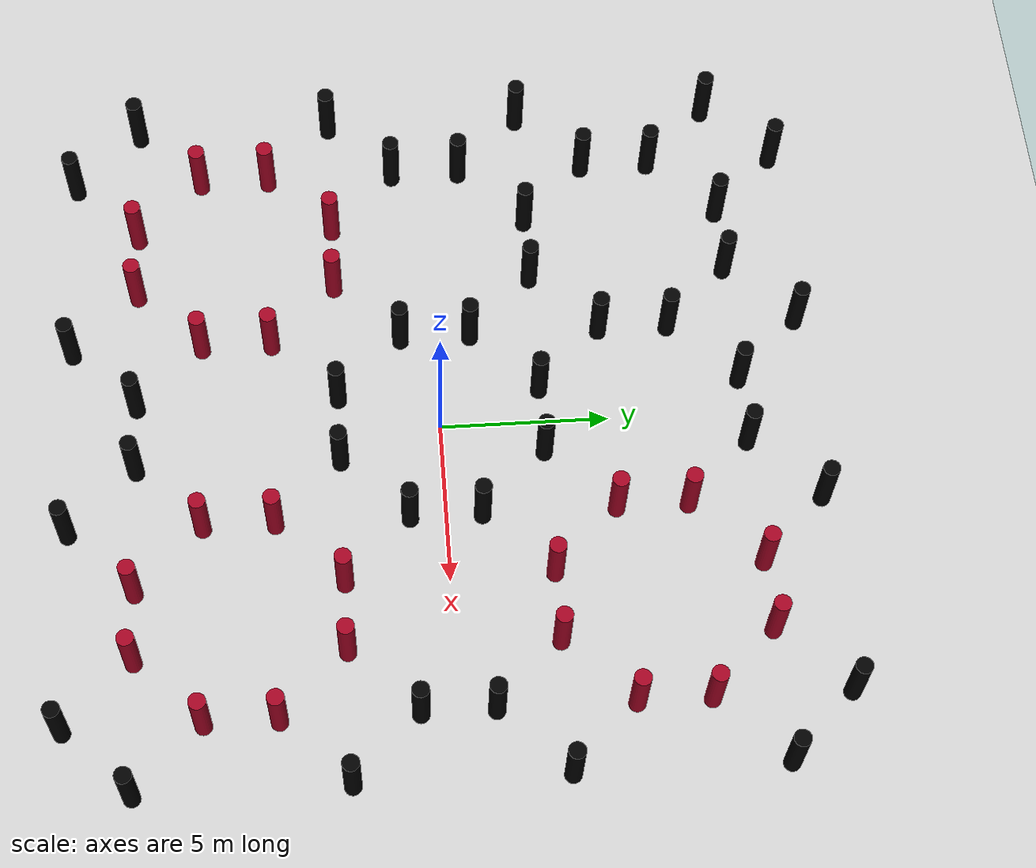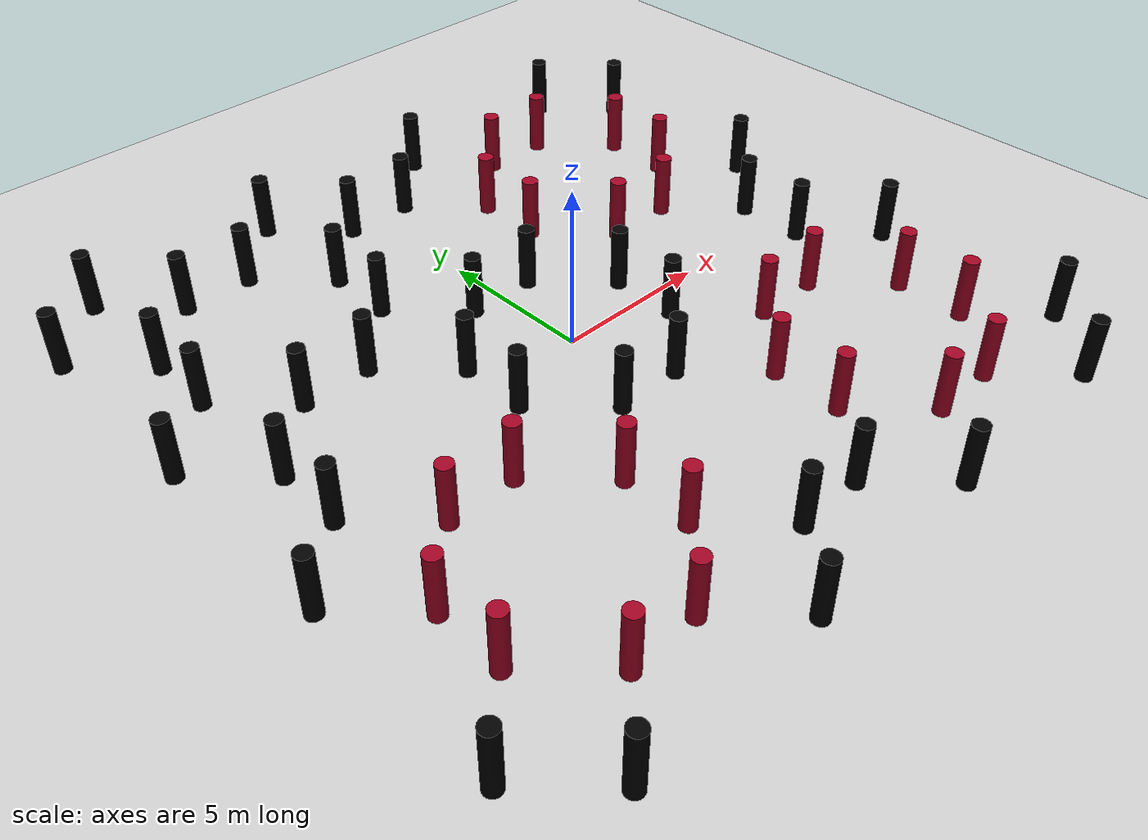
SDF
<?xml version="1.0" ?>
<sdf version="1.6">
  <world name="ros_logo">
    <!-- Ground plane -->
    <include>
      <uri>model://ground_plane</uri>
    </include>

    <!-- Luz principal -->
    <include>
      <uri>model://sun</uri>
    </include>

    <!-- NUMERO 1 -->
    <!-- BLOQUE DERECHO-->
    <model name="wall_D_3_1">
      <static>true</static>
      <pose>3 1.05 1 0 0 0</pose>
      <link name="link"><collision name="wall"><laser_retro>0</laser_retro>
        <geometry><cylinder><radius>0.25</radius><length>2.0</length></cylinder></geometry></collision>
      <visual name="vis"><geometry><cylinder><radius>0.25</radius><length>2.0</length></cylinder></geometry>
      <material><ambient>0.0 0.0 0.0 1</ambient><diffuse>0.0 0.0 0.0 1</diffuse></material></visual></link>
    </model>
    <!-- BLOQUE IZQUIERDO-->
    <model name="wall_I_3_5">
      <static>true</static>
      <pose>3 4.95 1 0 0 0</pose>
      <link name="link"><collision name="wall"><laser_retro>255</laser_retro>
        <geometry><cylinder><radius>0.25</radius><length>2.0</length></cylinder></geometry></collision>
      <visual name="vis"><geometry><cylinder><radius>0.25</radius><length>2.0</length></cylinder></geometry>
      <material><ambient>0.627 0.012 0.133 1</ambient><diffuse>0.627 0.012 0.133 1</diffuse></material></visual></link>
    </model>
    <!-- BLOQUE ARRIBA-->
    <model name="wall_A_5_3">
      <static>true</static>
      <pose>4.95 3 1 0 0 0</pose>
      <link name="link"><collision name="wall"><laser_retro>255</laser_retro>
        <geometry><cylinder><radius>0.25</radius><length>2.0</length></cylinder></geometry></collision>
      <visual name="vis"><geometry><cylinder><radius>0.25</radius><length>2.0</length></cylinder></geometry>
      <material><ambient>0.627 0.012 0.133 1</ambient><diffuse>0.627 0.012 0.133 1</diffuse></material></visual></link>
    </model>
    <!-- BLOQUE ABAJO-->
    <model name="wall_B_1_3">
      <static>true</static>
      <pose>1.05 3 1 0 0 0</pose>
      <link name="link"><collision name="wall"><laser_retro>0</laser_retro>
        <geometry><cylinder><radius>0.25</radius><length>2.0</length></cylinder></geometry></collision>
      <visual name="vis"><geometry><cylinder><radius>0.25</radius><length>2.0</length></cylinder></geometry>
      <material><ambient>0.0 0.0 0.0 1</ambient><diffuse>0.0 0.0 0.0 1</diffuse></material></visual></link>
    </model>

    <!-- NUMERO 2 -->
    <!-- BLOQUE DERECHO -->
    <model name="wall_D_3_-5">
      <static>true</static>
      <pose>3 -4.95 1 0 0 0</pose>
      <link name="link"><collision name="wall"><laser_retro>255</laser_retro>
        <geometry><cylinder><radius>0.25</radius><length>2.0</length></cylinder></geometry></collision>
      <visual name="vis"><geometry><cylinder><radius>0.25</radius><length>2.0</length></cylinder></geometry>
      <material><ambient>0.627 0.012 0.133 1</ambient><diffuse>0.627 0.012 0.133 1</diffuse></material></visual></link>
    </model>
    <!-- BLOQUE IZQUIERDO-->
    <model name="wall_I_3_-1">
      <static>true</static>
      <pose>3 -1.05 1 0 0 0</pose>
      <link name="link"><collision name="wall"><laser_retro>0</laser_retro>
        <geometry><cylinder><radius>0.25</radius><length>2.0</length></cylinder></geometry></collision>
      <visual name="vis"><geometry><cylinder><radius>0.25</radius><length>2.0</length></cylinder></geometry>
      <material><ambient>0.0 0.0 0.0 1</ambient><diffuse>0.0 0.0 0.0 1</diffuse></material></visual></link>
    </model>
    <!-- BLOQUE ARRIBA-->
    <model name="wall_A_5_-3">
      <static>true</static>
      <pose>4.95 -3 1 0 0 0</pose>
      <link name="link"><collision name="wall"><laser_retro>255</laser_retro>
        <geometry><cylinder><radius>0.25</radius><length>2.0</length></cylinder></geometry></collision>
      <visual name="vis"><geometry><cylinder><radius>0.25</radius><length>2.0</length></cylinder></geometry>
      <material><ambient>0.627 0.012 0.133 1</ambient><diffuse>0.627 0.012 0.133 1</diffuse></material></visual></link>
    </model>
    <!-- BLOQUE ABAJO-->
    <model name="wall_B_1_-3">
      <static>true</static>
      <pose>1.05 -3 1 0 0 0</pose>
      <link name="link"><collision name="wall"><laser_retro>0</laser_retro>
        <geometry><cylinder><radius>0.25</radius><length>2.0</length></cylinder></geometry></collision>
      <visual name="vis"><geometry><cylinder><radius>0.25</radius><length>2.0</length></cylinder></geometry>
      <material><ambient>0.0 0.0 0.0 1</ambient><diffuse>0.0 0.0 0.0 1</diffuse></material></visual></link>
    </model>

    <!-- NUMERO 3 -->
    <!-- BLOQUE DERECHO -->
    <model name="wall_D_-3_-5">
      <static>true</static>
      <pose>-3 -4.95 1 0 0 0</pose>
      <link name="link"><collision name="wall"><laser_retro>255</laser_retro>
        <geometry><cylinder><radius>0.25</radius><length>2.0</length></cylinder></geometry></collision>
      <visual name="vis"><geometry><cylinder><radius>0.25</radius><length>2.0</length></cylinder></geometry>
      <material><ambient>0.627 0.012 0.133 1</ambient><diffuse>0.627 0.012 0.133 1</diffuse></material></visual></link>
    </model>
    <!-- BLOQUE IZQUIERDO-->
    <model name="wall_I_-3_-1">
      <static>true</static>
      <pose>-3 -1.05 1 0 0 0</pose>
      <link name="link"><collision name="wall"><laser_retro>0</laser_retro>
        <geometry><cylinder><radius>0.25</radius><length>2.0</length></cylinder></geometry></collision>
      <visual name="vis"><geometry><cylinder><radius>0.25</radius><length>2.0</length></cylinder></geometry>
      <material><ambient>0.0 0.0 0.0 1</ambient><diffuse>0.0 0.0 0.0 1</diffuse></material></visual></link>
    </model>
    <!-- BLOQUE ARRIBA-->
    <model name="wall_A_-5_-3">
      <static>true</static>
      <pose>-4.95 -3 1 0 0 0</pose>
      <link name="link"><collision name="wall"><laser_retro>255</laser_retro>
        <geometry><cylinder><radius>0.25</radius><length>2.0</length></cylinder></geometry></collision>
      <visual name="vis"><geometry><cylinder><radius>0.25</radius><length>2.0</length></cylinder></geometry>
      <material><ambient>0.627 0.012 0.133 1</ambient><diffuse>0.627 0.012 0.133 1</diffuse></material></visual></link>
    </model>
    <!-- BLOQUE ABAJO-->
    <model name="wall_B_-1_-3">
      <static>true</static>
      <pose>-1.05 -3 1 0 0 0</pose>
      <link name="link"><collision name="wall"><laser_retro>0</laser_retro>
        <geometry><cylinder><radius>0.25</radius><length>2.0</length></cylinder></geometry></collision>
      <visual name="vis"><geometry><cylinder><radius>0.25</radius><length>2.0</length></cylinder></geometry>
      <material><ambient>0.0 0.0 0.0 1</ambient><diffuse>0.0 0.0 0.0 1</diffuse></material></visual></link>
    </model>

    <!-- NUMERO 4 -->
    <!-- BLOQUE DERECHO -->
    <model name="wall_D_-3_5">
      <static>true</static>
      <pose>-3 4.95 1 0 0 0</pose>
      <link name="link"><collision name="wall"><laser_retro>0</laser_retro>
        <geometry><cylinder><radius>0.25</radius><length>2.0</length></cylinder></geometry></collision>
      <visual name="vis"><geometry><cylinder><radius>0.25</radius><length>2.0</length></cylinder></geometry>
      <material><ambient>0.0 0.0 0.0 1</ambient><diffuse>0.0 0.0 0.0 1</diffuse></material></visual></link>
    </model>
    <!-- BLOQUE IZQUIERDO-->
    <model name="wall_I_-3_1">
      <static>true</static>
      <pose>-3 1.05 1 0 0 0</pose>
      <link name="link"><collision name="wall"><laser_retro>0</laser_retro>
        <geometry><cylinder><radius>0.25</radius><length>2.0</length></cylinder></geometry></collision>
      <visual name="vis"><geometry><cylinder><radius>0.25</radius><length>2.0</length></cylinder></geometry>
      <material><ambient>0.0 0.0 0.0 1</ambient><diffuse>0.0 0.0 0.0 1</diffuse></material></visual></link>
    </model>
    <!-- BLOQUE ARRIBA-->
    <model name="wall_A_-5_3">
      <static>true</static>
      <pose>-4.95 3 1 0 0 0</pose>
      <link name="link"><collision name="wall"><laser_retro>0</laser_retro>
        <geometry><cylinder><radius>0.25</radius><length>2.0</length></cylinder></geometry></collision>
      <visual name="vis"><geometry><cylinder><radius>0.25</radius><length>2.0</length></cylinder></geometry>
      <material><ambient>0.0 0.0 0.0 1</ambient><diffuse>0.0 0.0 0.0 1</diffuse></material></visual></link>
    </model>
    <!-- BLOQUE ABAJO-->
    <model name="wall_B_-1_3">
      <static>true</static>
      <pose>-1.05 3 1 0 0 0</pose>
      <link name="link"><collision name="wall"><laser_retro>0</laser_retro>
        <geometry><cylinder><radius>0.25</radius><length>2.0</length></cylinder></geometry></collision>
      <visual name="vis"><geometry><cylinder><radius>0.25</radius><length>2.0</length></cylinder></geometry>
      <material><ambient>0.0 0.0 0.0 1</ambient><diffuse>0.0 0.0 0.0 1</diffuse></material></visual></link>
    </model>

    <!-- NUMERO 5 -->
    <!-- BLOQUE DERECHO -->
    <model name="wall_D_-3_7">
      <static>true</static>
      <pose>-3 7.05 1 0 0 0</pose>
      <link name="link"><collision name="wall"><laser_retro>0</laser_retro>
        <geometry><cylinder><radius>0.25</radius><length>2.0</length></cylinder></geometry></collision>
      <visual name="vis"><geometry><cylinder><radius>0.25</radius><length>2.0</length></cylinder></geometry>
      <material><ambient>0.0 0.0 0.0 1</ambient><diffuse>0.0 0.0 0.0 1</diffuse></material></visual></link>
    </model>
    <!-- BLOQUE IZQUIERDO-->
    <model name="wall_I_-3_11">
      <static>true</static>
      <pose>-3 10.95 1 0 0 0</pose>
      <link name="link"><collision name="wall"><laser_retro>0</laser_retro>
        <geometry><cylinder><radius>0.25</radius><length>2.0</length></cylinder></geometry></collision>
      <visual name="vis"><geometry><cylinder><radius>0.25</radius><length>2.0</length></cylinder></geometry>
      <material><ambient>0.0 0.0 0.0 1</ambient><diffuse>0.0 0.0 0.0 1</diffuse></material></visual></link>
    </model>
    <!-- BLOQUE ARRIBA-->
    <model name="wall_A_-5_9">
      <static>true</static>
      <pose>-4.95 9 1 0 0 0</pose>
      <link name="link"><collision name="wall"><laser_retro>0</laser_retro>
        <geometry><cylinder><radius>0.25</radius><length>2.0</length></cylinder></geometry></collision>
      <visual name="vis"><geometry><cylinder><radius>0.25</radius><length>2.0</length></cylinder></geometry>
      <material><ambient>0.0 0.0 0.0 1</ambient><diffuse>0.0 0.0 0.0 1</diffuse></material></visual></link>
    </model>
    <!-- BLOQUE ABAJO-->
    <model name="wall_B_-1_9">
      <static>true</static>
      <pose>-1.05 9 1 0 0 0</pose>
      <link name="link"><collision name="wall"><laser_retro>0</laser_retro>
        <geometry><cylinder><radius>0.25</radius><length>2.0</length></cylinder></geometry></collision>
      <visual name="vis"><geometry><cylinder><radius>0.25</radius><length>2.0</length></cylinder></geometry>
      <material><ambient>0.0 0.0 0.0 1</ambient><diffuse>0.0 0.0 0.0 1</diffuse></material></visual></link>
    </model>

    <!-- NUMERO 6 -->
    <!-- BLOQUE DERECHO -->
    <model name="wall_D_3_7">
      <static>true</static>
      <pose>3 7.05 1 0 0 0</pose>
      <link name="link"><collision name="wall"><laser_retro>255</laser_retro>
        <geometry><cylinder><radius>0.25</radius><length>2.0</length></cylinder></geometry></collision>
      <visual name="vis"><geometry><cylinder><radius>0.25</radius><length>2.0</length></cylinder></geometry>
      <material><ambient>0.627 0.012 0.133 1</ambient><diffuse>0.627 0.012 0.133 1</diffuse></material></visual></link>
    </model>
    <!-- BLOQUE IZQUIERDO-->
    <model name="wall_I_3_11">
      <static>true</static>
      <pose>3 10.95 1 0 0 0</pose>
      <link name="link"><collision name="wall"><laser_retro>0</laser_retro>
        <geometry><cylinder><radius>0.25</radius><length>2.0</length></cylinder></geometry></collision>
      <visual name="vis"><geometry><cylinder><radius>0.25</radius><length>2.0</length></cylinder></geometry>
      <material><ambient>0.0 0.0 0.0 1</ambient><diffuse>0.0 0.0 0.0 1</diffuse></material></visual></link>
    </model>
    <!-- BLOQUE ARRIBA-->
    <model name="wall_A_5_9">
      <static>true</static>
      <pose>4.95 9 1 0 0 0</pose>
      <link name="link"><collision name="wall"><laser_retro>255</laser_retro>
        <geometry><cylinder><radius>0.25</radius><length>2.0</length></cylinder></geometry></collision>
      <visual name="vis"><geometry><cylinder><radius>0.25</radius><length>2.0</length></cylinder></geometry>
      <material><ambient>0.627 0.012 0.133 1</ambient><diffuse>0.627 0.012 0.133 1</diffuse></material></visual></link>
    </model>
    <!-- BLOQUE ABAJO-->
    <model name="wall_B_1_9">
      <static>true</static>
      <pose>1.05 9 1 0 0 0</pose>
      <link name="link"><collision name="wall"><laser_retro>0</laser_retro>
        <geometry><cylinder><radius>0.25</radius><length>2.0</length></cylinder></geometry></collision>
      <visual name="vis"><geometry><cylinder><radius>0.25</radius><length>2.0</length></cylinder></geometry>
      <material><ambient>0.0 0.0 0.0 1</ambient><diffuse>0.0 0.0 0.0 1</diffuse></material></visual></link>
    </model>

    <!-- NUMERO 7 -->
    <!-- BLOQUE DERECHO -->
    <model name="wall_D_9_7">
      <static>true</static>
      <pose>9 7.05 1 0 0 0</pose>
      <link name="link"><collision name="wall"><laser_retro>255</laser_retro>
        <geometry><cylinder><radius>0.25</radius><length>2.0</length></cylinder></geometry></collision>
      <visual name="vis"><geometry><cylinder><radius>0.25</radius><length>2.0</length></cylinder></geometry>
      <material><ambient>0.627 0.012 0.133 1</ambient><diffuse>0.627 0.012 0.133 1</diffuse></material></visual></link>
    </model>
    <!-- BLOQUE IZQUIERDO-->
    <model name="wall_I_9_11">
      <static>true</static>
      <pose>9 10.95 1 0 0 0</pose>
      <link name="link"><collision name="wall"><laser_retro>0</laser_retro>
        <geometry><cylinder><radius>0.25</radius><length>2.0</length></cylinder></geometry></collision>
      <visual name="vis"><geometry><cylinder><radius>0.25</radius><length>2.0</length></cylinder></geometry>
      <material><ambient>0.0 0.0 0.0 1</ambient><diffuse>0.0 0.0 0.0 1</diffuse></material></visual></link>
    </model>
    <!-- BLOQUE ARRIBA-->
    <model name="wall_A_11_9">
      <static>true</static>
      <pose>10.95 9 1 0 0 0</pose>
      <link name="link"><collision name="wall"><laser_retro>0</laser_retro>
        <geometry><cylinder><radius>0.25</radius><length>2.0</length></cylinder></geometry></collision>
      <visual name="vis"><geometry><cylinder><radius>0.25</radius><length>2.0</length></cylinder></geometry>
      <material><ambient>0.0 0.0 0.0 1</ambient><diffuse>0.0 0.0 0.0 1</diffuse></material></visual></link>
    </model>
    <!-- BLOQUE ABAJO-->
    <model name="wall_B_7_9">
      <static>true</static>
      <pose>7.05 9 1 0 0 0</pose>
      <link name="link"><collision name="wall"><laser_retro>255</laser_retro>
        <geometry><cylinder><radius>0.25</radius><length>2.0</length></cylinder></geometry></collision>
      <visual name="vis"><geometry><cylinder><radius>0.25</radius><length>2.0</length></cylinder></geometry>
      <material><ambient>0.627 0.012 0.133 1</ambient><diffuse>0.627 0.012 0.133 1</diffuse></material></visual></link>
    </model>

    <!-- NUMERO 8 -->
    <!-- BLOQUE DERECHO -->
    <model name="wall_D_9_1">
      <static>true</static>
      <pose>9 1.05 1 0 0 0</pose>
      <link name="link"><collision name="wall"><laser_retro>0</laser_retro>
        <geometry><cylinder><radius>0.25</radius><length>2.0</length></cylinder></geometry></collision>
      <visual name="vis"><geometry><cylinder><radius>0.25</radius><length>2.0</length></cylinder></geometry>
      <material><ambient>0.0 0.0 0.0 1</ambient><diffuse>0.0 0.0 0.0 1</diffuse></material></visual></link>
    </model>
    <!-- BLOQUE IZQUIERDO-->
    <model name="wall_I_9_5">
      <static>true</static>
      <pose>9 4.95 1 0 0 0</pose>
      <link name="link"><collision name="wall"><laser_retro>255</laser_retro>
        <geometry><cylinder><radius>0.25</radius><length>2.0</length></cylinder></geometry></collision>
      <visual name="vis"><geometry><cylinder><radius>0.25</radius><length>2.0</length></cylinder></geometry>
      <material><ambient>0.627 0.012 0.133 1</ambient><diffuse>0.627 0.012 0.133 1</diffuse></material></visual></link>
    </model>
    <!-- BLOQUE ARRIBA-->
    <model name="wall_A_11_3">
      <static>true</static>
      <pose>10.95 3 1 0 0 0</pose>
      <link name="link"><collision name="wall"><laser_retro>0</laser_retro>
        <geometry><cylinder><radius>0.25</radius><length>2.0</length></cylinder></geometry></collision>
      <visual name="vis"><geometry><cylinder><radius>0.25</radius><length>2.0</length></cylinder></geometry>
      <material><ambient>0.0 0.0 0.0 1</ambient><diffuse>0.0 0.0 0.0 1</diffuse></material></visual></link>
    </model>
    <!-- BLOQUE ABAJO-->
    <model name="wall_B_7_3">
      <static>true</static>
      <pose>7.05 3 1 0 0 0</pose>
      <link name="link"><collision name="wall"><laser_retro>255</laser_retro>
        <geometry><cylinder><radius>0.25</radius><length>2.0</length></cylinder></geometry></collision>
      <visual name="vis"><geometry><cylinder><radius>0.25</radius><length>2.0</length></cylinder></geometry>
      <material><ambient>0.627 0.012 0.133 1</ambient><diffuse>0.627 0.012 0.133 1</diffuse></material></visual></link>
    </model>

    <!-- NUMERO 9 -->
    <!-- BLOQUE DERECHO -->
    <model name="wall_D_9_-5">
      <static>true</static>
      <pose>9 -4.95 1 0 0 0</pose>
      <link name="link"><collision name="wall"><laser_retro>255</laser_retro>
        <geometry><cylinder><radius>0.25</radius><length>2.0</length></cylinder></geometry></collision>
      <visual name="vis"><geometry><cylinder><radius>0.25</radius><length>2.0</length></cylinder></geometry>
      <material><ambient>0.627 0.012 0.133 1</ambient><diffuse>0.627 0.012 0.133 1</diffuse></material></visual></link>
    </model>
    <!-- BLOQUE IZQUIERDO-->
    <model name="wall_I_9_-1">
      <static>true</static>
      <pose>9 -1.05 1 0 0 0</pose>
      <link name="link"><collision name="wall"><laser_retro>0</laser_retro>
        <geometry><cylinder><radius>0.25</radius><length>2.0</length></cylinder></geometry></collision>
      <visual name="vis"><geometry><cylinder><radius>0.25</radius><length>2.0</length></cylinder></geometry>
      <material><ambient>0.0 0.0 0.0 1</ambient><diffuse>0.0 0.0 0.0 1</diffuse></material></visual></link>
    </model>
    <!-- BLOQUE ARRIBA-->
    <model name="wall_A_11_-3">
      <static>true</static>
      <pose>10.95 -3 1 0 0 0</pose>
      <link name="link"><collision name="wall"><laser_retro>0</laser_retro>
        <geometry><cylinder><radius>0.25</radius><length>2.0</length></cylinder></geometry></collision>
      <visual name="vis"><geometry><cylinder><radius>0.25</radius><length>2.0</length></cylinder></geometry>
      <material><ambient>0.0 0.0 0.0 1</ambient><diffuse>0.0 0.0 0.0 1</diffuse></material></visual></link>
    </model>
    <!-- BLOQUE ABAJO-->
    <model name="wall_B_7_-3">
      <static>true</static>
      <pose>7.05 -3 1 0 0 0</pose>
      <link name="link"><collision name="wall"><laser_retro>255</laser_retro>
        <geometry><cylinder><radius>0.25</radius><length>2.0</length></cylinder></geometry></collision>
      <visual name="vis"><geometry><cylinder><radius>0.25</radius><length>2.0</length></cylinder></geometry>
      <material><ambient>0.627 0.012 0.133 1</ambient><diffuse>0.627 0.012 0.133 1</diffuse></material></visual></link>
    </model>

    <!-- NUMERO 10 -->
    <!-- BLOQUE DERECHO -->
    <model name="wall_D_9_-11">
      <static>true</static>
      <pose>9 -10.95 1 0 0 0</pose>
      <link name="link"><collision name="wall"><laser_retro>0</laser_retro>
        <geometry><cylinder><radius>0.25</radius><length>2.0</length></cylinder></geometry></collision>
      <visual name="vis"><geometry><cylinder><radius>0.25</radius><length>2.0</length></cylinder></geometry>
      <material><ambient>0.0 0.0 0.0 1</ambient><diffuse>0.0 0.0 0.0 1</diffuse></material></visual></link>
    </model>
    <!-- BLOQUE IZQUIERDO-->
    <model name="wall_I_9_-7">
      <static>true</static>
      <pose>9 -7.05 1 0 0 0</pose>
      <link name="link"><collision name="wall"><laser_retro>255</laser_retro>
        <geometry><cylinder><radius>0.25</radius><length>2.0</length></cylinder></geometry></collision>
      <visual name="vis"><geometry><cylinder><radius>0.25</radius><length>2.0</length></cylinder></geometry>
      <material><ambient>0.627 0.012 0.133 1</ambient><diffuse>0.627 0.012 0.133 1</diffuse></material></visual></link>
    </model>
    <!-- BLOQUE ARRIBA-->
    <model name="wall_A_11_-9">
      <static>true</static>
      <pose>10.95 -9 1 0 0 0</pose>
      <link name="link"><collision name="wall"><laser_retro>0</laser_retro>
        <geometry><cylinder><radius>0.25</radius><length>2.0</length></cylinder></geometry></collision>
      <visual name="vis"><geometry><cylinder><radius>0.25</radius><length>2.0</length></cylinder></geometry>
      <material><ambient>0.0 0.0 0.0 1</ambient><diffuse>0.0 0.0 0.0 1</diffuse></material></visual></link>
    </model>
    <!-- BLOQUE ABAJO-->
    <model name="wall_B_7_-9">
      <static>true</static>
      <pose>7.05 -9 1 0 0 0</pose>
      <link name="link"><collision name="wall"><laser_retro>255</laser_retro>
        <geometry><cylinder><radius>0.25</radius><length>2.0</length></cylinder></geometry></collision>
      <visual name="vis"><geometry><cylinder><radius>0.25</radius><length>2.0</length></cylinder></geometry>
      <material><ambient>0.627 0.012 0.133 1</ambient><diffuse>0.627 0.012 0.133 1</diffuse></material></visual></link>
    </model>

    <!-- NUMERO 11 -->
    <!-- BLOQUE DERECHO -->
    <model name="wall_D_3_-11">
      <static>true</static>
      <pose>3 -10.95 1 0 0 0</pose>
      <link name="link"><collision name="wall"><laser_retro>0</laser_retro>
        <geometry><cylinder><radius>0.25</radius><length>2.0</length></cylinder></geometry></collision>
      <visual name="vis"><geometry><cylinder><radius>0.25</radius><length>2.0</length></cylinder></geometry>
      <material><ambient>0.0 0.0 0.0 1</ambient><diffuse>0.0 0.0 0.0 1</diffuse></material></visual></link>
    </model>
    <!-- BLOQUE IZQUIERDO-->
    <model name="wall_I_3_-7">
      <static>true</static>
      <pose>3 -7.05 1 0 0 0</pose>
      <link name="link"><collision name="wall"><laser_retro>255</laser_retro>
        <geometry><cylinder><radius>0.25</radius><length>2.0</length></cylinder></geometry></collision>
      <visual name="vis"><geometry><cylinder><radius>0.25</radius><length>2.0</length></cylinder></geometry>
      <material><ambient>0.627 0.012 0.133 1</ambient><diffuse>0.627 0.012 0.133 1</diffuse></material></visual></link>
    </model>
    <!-- BLOQUE ARRIBA-->
    <model name="wall_A_5_-9">
      <static>true</static>
      <pose>4.95 -9 1 0 0 0</pose>
      <link name="link"><collision name="wall"><laser_retro>255</laser_retro>
        <geometry><cylinder><radius>0.25</radius><length>2.0</length></cylinder></geometry></collision>
      <visual name="vis"><geometry><cylinder><radius>0.25</radius><length>2.0</length></cylinder></geometry>
      <material><ambient>0.627 0.012 0.133 1</ambient><diffuse>0.627 0.012 0.133 1</diffuse></material></visual></link>
    </model>
    <!-- BLOQUE ABAJO-->
    <model name="wall_B_1_-9">
      <static>true</static>
      <pose>1.05 -9 1 0 0 0</pose>
      <link name="link"><collision name="wall"><laser_retro>0</laser_retro>
        <geometry><cylinder><radius>0.25</radius><length>2.0</length></cylinder></geometry></collision>
      <visual name="vis"><geometry><cylinder><radius>0.25</radius><length>2.0</length></cylinder></geometry>
      <material><ambient>0.0 0.0 0.0 1</ambient><diffuse>0.0 0.0 0.0 1</diffuse></material></visual></link>
    </model>

    <!-- NUMERO 12 -->
    <!-- BLOQUE DERECHO -->
    <model name="wall_D_-3_-11">
      <static>true</static>
      <pose>-3 -10.95 1 0 0 0</pose>
      <link name="link"><collision name="wall"><geometry><cylinder><radius>0.25</radius><length>2.0</length></cylinder></geometry></collision>
      <visual name="vis"><geometry><cylinder><radius>0.25</radius><length>2.0</length></cylinder></geometry>
      <material><ambient>0.0 0.0 0.0 1</ambient><diffuse>0.0 0.0 0.0 1</diffuse></material></visual></link>
    </model>
    <!-- BLOQUE IZQUIERDO-->
    <model name="wall_I_-3_-7">
      <static>true</static>
      <pose>-3 -7.05 1 0 0 0</pose>
      <link name="link"><collision name="wall"><laser_retro>255</laser_retro>
        <geometry><cylinder><radius>0.25</radius><length>2.0</length></cylinder></geometry></collision>
      <visual name="vis"><geometry><cylinder><radius>0.25</radius><length>2.0</length></cylinder></geometry>
      <material><ambient>0.627 0.012 0.133 1</ambient><diffuse>0.627 0.012 0.133 1</diffuse></material></visual></link>
    </model>
    <!-- BLOQUE ARRIBA-->
    <model name="wall_A_-5_-9">
      <static>true</static>
      <pose>-4.95 -9 1 0 0 0</pose>
      <link name="link"><collision name="wall"><laser_retro>255</laser_retro>
        <geometry><cylinder><radius>0.25</radius><length>2.0</length></cylinder></geometry></collision>
      <visual name="vis"><geometry><cylinder><radius>0.25</radius><length>2.0</length></cylinder></geometry>
      <material><ambient>0.627 0.012 0.133 1</ambient><diffuse>0.627 0.012 0.133 1</diffuse></material></visual></link>
    </model>
    <!-- BLOQUE ABAJO-->
    <model name="wall_B_-1_-9">
      <static>true</static>
      <pose>-1.05 -9 1 0 0 0</pose>
      <link name="link"><collision name="wall"><geometry><cylinder><radius>0.25</radius><length>2.0</length></cylinder></geometry></collision>
      <visual name="vis"><geometry><cylinder><radius>0.25</radius><length>2.0</length></cylinder></geometry>
      <material><ambient>0.0 0.0 0.0 1</ambient><diffuse>0.0 0.0 0.0 1</diffuse></material></visual></link>
    </model>

    <!-- NUMERO 13 -->
    <!-- BLOQUE DERECHO -->
    <model name="wall_D_-9_-11">
      <static>true</static>
      <pose>-9 -10.95 1 0 0 0</pose>
      <link name="link"><collision name="wall"><geometry><cylinder><radius>0.25</radius><length>2.0</length></cylinder></geometry></collision>
      <visual name="vis"><geometry><cylinder><radius>0.25</radius><length>2.0</length></cylinder></geometry>
      <material><ambient>0.0 0.0 0.0 1</ambient><diffuse>0.0 0.0 0.0 1</diffuse></material></visual></link>
    </model>
    <!-- BLOQUE IZQUIERDO-->
    <model name="wall_I_-9_-7">
      <static>true</static>
      <pose>-9 -7.05 1 0 0 0</pose>
      <link name="link"><collision name="wall"><laser_retro>255</laser_retro>
        <geometry><cylinder><radius>0.25</radius><length>2.0</length></cylinder></geometry></collision>
      <visual name="vis"><geometry><cylinder><radius>0.25</radius><length>2.0</length></cylinder></geometry>
      <material><ambient>0.627 0.012 0.133 1</ambient><diffuse>0.627 0.012 0.133 1</diffuse></material></visual></link>
    </model>
    <!-- BLOQUE ARRIBA-->
    <model name="wall_A_-7_-9">
      <static>true</static>
      <pose>-7.05 -9 1 0 0 0</pose>
      <link name="link"><collision name="wall"><laser_retro>255</laser_retro>
        <geometry><cylinder><radius>0.25</radius><length>2.0</length></cylinder></geometry></collision>
      <visual name="vis"><geometry><cylinder><radius>0.25</radius><length>2.0</length></cylinder></geometry>
      <material><ambient>0.627 0.012 0.133 1</ambient><diffuse>0.627 0.012 0.133 1</diffuse></material></visual></link>
    </model>
    <!-- BLOQUE ABAJO-->
    <model name="wall_B_-11_-9">
      <static>true</static>
      <pose>-10.95 -9 1 0 0 0</pose>
      <link name="link"><collision name="wall"><geometry><cylinder><radius>0.25</radius><length>2.0</length></cylinder></geometry></collision>
      <visual name="vis"><geometry><cylinder><radius>0.25</radius><length>2.0</length></cylinder></geometry>
      <material><ambient>0.0 0.0 0.0 1</ambient><diffuse>0.0 0.0 0.0 1</diffuse></material></visual></link>
    </model>

    <!-- NUMERO 14 -->
    <!-- BLOQUE DERECHO -->
    <model name="wall_D_-9_-5">
      <static>true</static>
      <pose>-9 -4.95 1 0 0 0</pose>
      <link name="link"><collision name="wall"><laser_retro>255</laser_retro>
        <geometry><cylinder><radius>0.25</radius><length>2.0</length></cylinder></geometry></collision>
      <visual name="vis"><geometry><cylinder><radius>0.25</radius><length>2.0</length></cylinder></geometry>
      <material><ambient>0.627 0.012 0.133 1</ambient><diffuse>0.627 0.012 0.133 1</diffuse></material></visual></link>
    </model>
    <!-- BLOQUE IZQUIERDO-->
    <model name="wall_I_-9_-1">
      <static>true</static>
      <pose>-9 -1.05 1 0 0 0</pose>
      <link name="link"><collision name="wall"><geometry><cylinder><radius>0.25</radius><length>2.0</length></cylinder></geometry></collision>
      <visual name="vis"><geometry><cylinder><radius>0.25</radius><length>2.0</length></cylinder></geometry>
      <material><ambient>0.0 0.0 0.0 1</ambient><diffuse>0.0 0.0 0.0 1</diffuse></material></visual></link>
    </model>
    <!-- BLOQUE ARRIBA-->
    <model name="wall_A_-7_-3">
      <static>true</static>
      <pose>-7.05 -3 1 0 0 0</pose>
      <link name="link"><collision name="wall"><laser_retro>255</laser_retro>
        <geometry><cylinder><radius>0.25</radius><length>2.0</length></cylinder></geometry></collision>
      <visual name="vis"><geometry><cylinder><radius>0.25</radius><length>2.0</length></cylinder></geometry>
      <material><ambient>0.627 0.012 0.133 1</ambient><diffuse>0.627 0.012 0.133 1</diffuse></material></visual></link>
    </model>
    <!-- BLOQUE ABAJO-->
    <model name="wall_B_-11_-3">
      <static>true</static>
      <pose>-10.95 -3 1 0 0 0</pose>
      <link name="link"><collision name="wall"><geometry><cylinder><radius>0.25</radius><length>2.0</length></cylinder></geometry></collision>
      <visual name="vis"><geometry><cylinder><radius>0.25</radius><length>2.0</length></cylinder></geometry>
      <material><ambient>0.0 0.0 0.0 1</ambient><diffuse>0.0 0.0 0.0 1</diffuse></material></visual></link>
    </model>

    <!-- NUMERO 15 -->
    <!-- BLOQUE DERECHO -->
    <model name="wall_D_-9_5">
      <static>true</static>
      <pose>-9 4.95 1 0 0 0</pose>
      <link name="link"><collision name="wall"><laser_retro>0</laser_retro>
        <geometry><cylinder><radius>0.25</radius><length>2.0</length></cylinder></geometry></collision>
      <visual name="vis"><geometry><cylinder><radius>0.25</radius><length>2.0</length></cylinder></geometry>
      <material><ambient>0.0 0.0 0.0 1</ambient><diffuse>0.0 0.0 0.0 1</diffuse></material></visual></link>
    </model>
    <!-- BLOQUE IZQUIERDO-->
    <model name="wall_I_-9_1">
      <static>true</static>
      <pose>-9 1.05 1 0 0 0</pose>
      <link name="link"><collision name="wall"><geometry><cylinder><radius>0.25</radius><length>2.0</length></cylinder></geometry></collision>
      <visual name="vis"><geometry><cylinder><radius>0.25</radius><length>2.0</length></cylinder></geometry>
      <material><ambient>0.0 0.0 0.0 1</ambient><diffuse>0.0 0.0 0.0 1</diffuse></material></visual></link>
    </model>
    <!-- BLOQUE ARRIBA-->
    <model name="wall_A_-7_3">
      <static>true</static>
      <pose>-7.05 3 1 0 0 0</pose>
      <link name="link"><collision name="wall"><laser_retro>0</laser_retro>
        <geometry><cylinder><radius>0.25</radius><length>2.0</length></cylinder></geometry></collision>
      <visual name="vis"><geometry><cylinder><radius>0.25</radius><length>2.0</length></cylinder></geometry>
      <material><ambient>0.0 0.0 0.0 1</ambient><diffuse>0.0 0.0 0.0 1</diffuse></material></visual></link>
    </model>
    <!-- BLOQUE ABAJO-->
    <model name="wall_B_-11_3">
      <static>true</static>
      <pose>-10.95 3 1 0 0 0</pose>
      <link name="link"><collision name="wall"><geometry><cylinder><radius>0.25</radius><length>2.0</length></cylinder></geometry></collision>
      <visual name="vis"><geometry><cylinder><radius>0.25</radius><length>2.0</length></cylinder></geometry>
      <material><ambient>0.0 0.0 0.0 1</ambient><diffuse>0.0 0.0 0.0 1</diffuse></material></visual></link>
    </model>

    <!-- NUMERO 16 -->
    <!-- BLOQUE DERECHO -->
    <model name="wall_D_-9_7">
      <static>true</static>
      <pose>-9 7.05 1 0 0 0</pose>
      <link name="link"><collision name="wall"><laser_retro>0</laser_retro>
        <geometry><cylinder><radius>0.25</radius><length>2.0</length></cylinder></geometry></collision>
      <visual name="vis"><geometry><cylinder><radius>0.25</radius><length>2.0</length></cylinder></geometry>
      <material><ambient>0.0 0.0 0.0 1</ambient><diffuse>0.0 0.0 0.0 1</diffuse></material></visual></link>
    </model>
    <!-- BLOQUE IZQUIERDO-->
    <model name="wall_I_-9_11">
      <static>true</static>
      <pose>-9 10.95 1 0 0 0</pose>
      <link name="link"><collision name="wall"><geometry><cylinder><radius>0.25</radius><length>2.0</length></cylinder></geometry></collision>
      <visual name="vis"><geometry><cylinder><radius>0.25</radius><length>2.0</length></cylinder></geometry>
      <material><ambient>0.0 0.0 0.0 1</ambient><diffuse>0.0 0.0 0.0 1</diffuse></material></visual></link>
    </model>
    <!-- BLOQUE ARRIBA-->
    <model name="wall_A_-7_9">
      <static>true</static>
      <pose>-7.05 9 1 0 0 0</pose>
      <link name="link"><collision name="wall"><laser_retro>0</laser_retro>
        <geometry><cylinder><radius>0.25</radius><length>2.0</length></cylinder></geometry></collision>
      <visual name="vis"><geometry><cylinder><radius>0.25</radius><length>2.0</length></cylinder></geometry>
      <material><ambient>0.0 0.0 0.0 1</ambient><diffuse>0.0 0.0 0.0 1</diffuse></material></visual></link>
    </model>
    <!-- BLOQUE ABAJO-->
    <model name="wall_B_-11_9">
      <static>true</static>
      <pose>-10.95 9 1 0 0 0</pose>
      <link name="link"><collision name="wall"><geometry><cylinder><radius>0.25</radius><length>2.0</length></cylinder></geometry></collision>
      <visual name="vis"><geometry><cylinder><radius>0.25</radius><length>2.0</length></cylinder></geometry>
      <material><ambient>0.0 0.0 0.0 1</ambient><diffuse>0.0 0.0 0.0 1</diffuse></material></visual></link>
    </model>

    <gui fullscreen='0'>
      <camera name='user_camera'>
        <pose>0.05 -0.05 7.2048 0 1.570796 0</pose>
        <view_controller>orbit</view_controller>
        <projection_type>orthographic</projection_type>
      </camera>
    </gui>

    </world>
</sdf>
